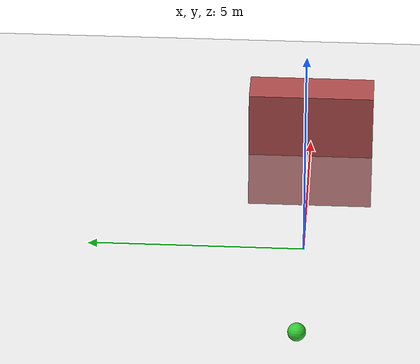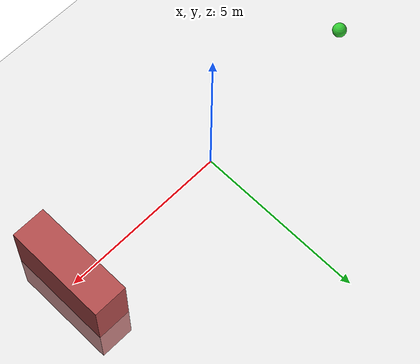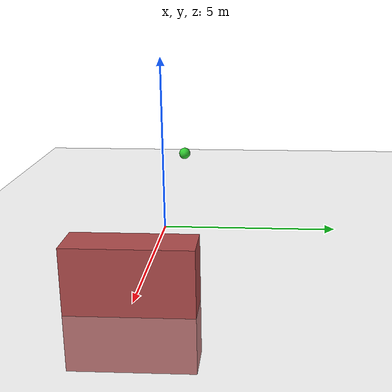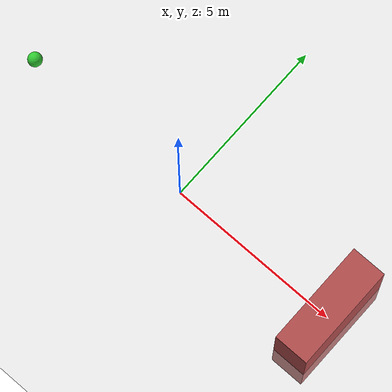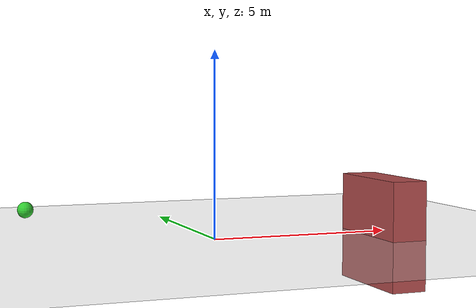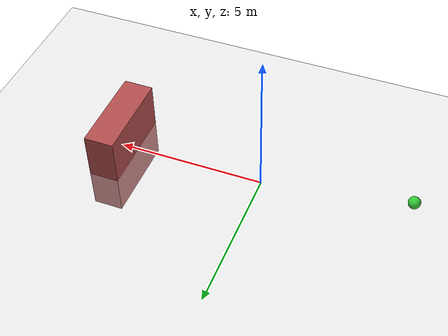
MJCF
<mujoco>
  <option gravity="0 0 -9.81"/>
  <worldbody>
    <body name="moving_obstacle" pos="5 0 0">
      <geom type="box" size="0.5 1.5 1.5" rgba="0.7 0.3 0.3 1"/>
      <joint name="slide_x" type="slide" axis="1 0 0" range="-2 2"/>
      <motor joint="slide_x" ctrlrange="-2 2" ctrllimited="true"/>
    </body>
    <body name="ground" pos="0 0 -0.1">
      <geom type="plane" size="30 30 0.1" rgba="0.8 0.8 0.8 1"/>
    </body>
    <body name="projectile" pos="-5 0 1">
      <geom type="sphere" size="0.2" density="1" rgba="0.2 0.8 0.2 1"/>
      <joint type="free"/>
    </body>
  </worldbody>
</mujoco>
